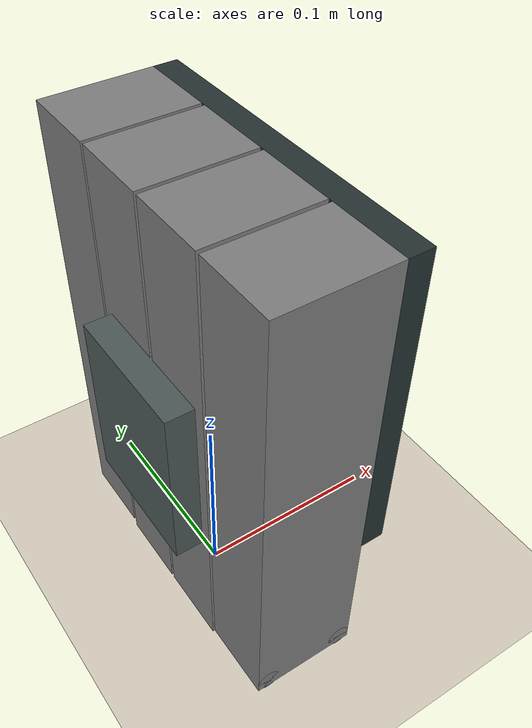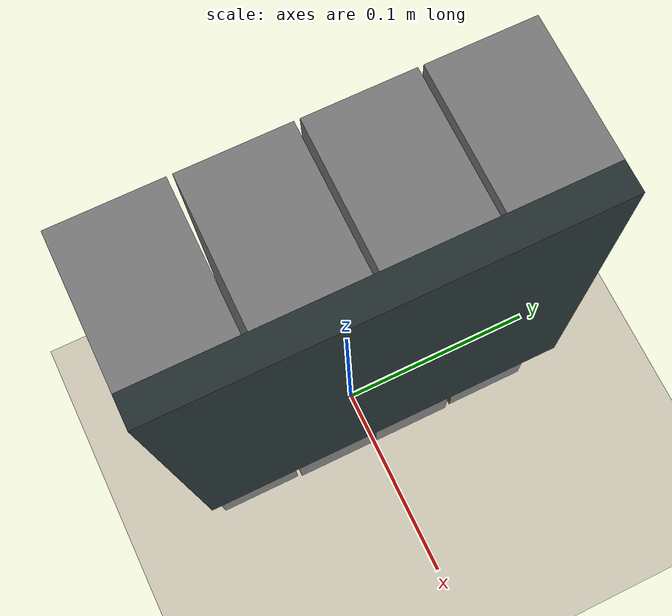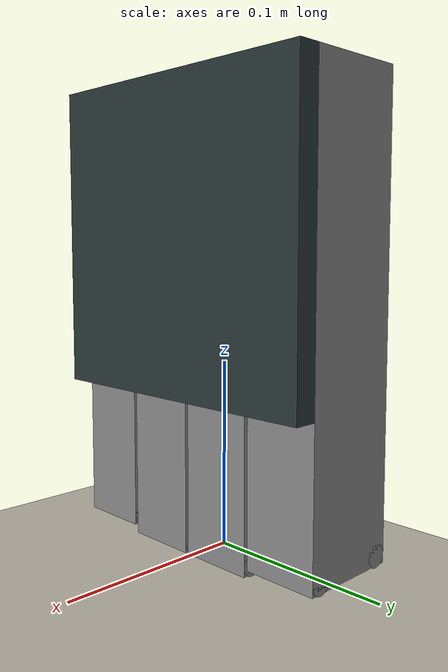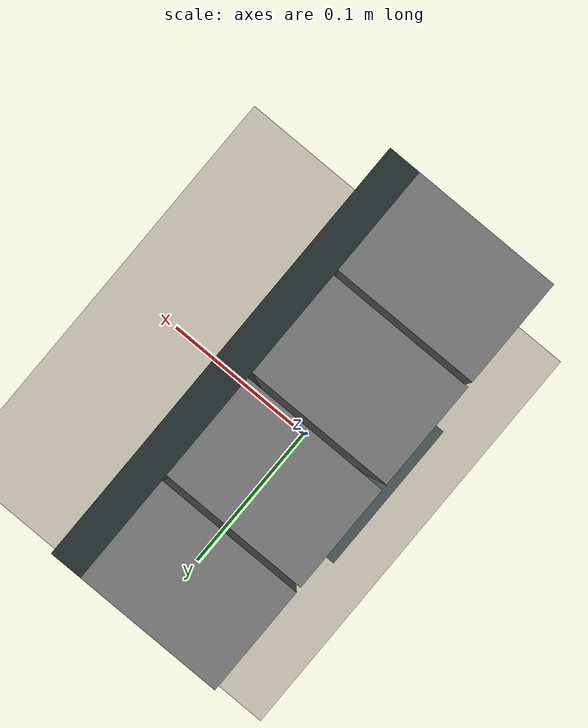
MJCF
<mujoco model="tars_mini">
  <compiler angle="radian"/>
  <option timestep="0.002" gravity="0 0 -9.81"/>
  <default>
    <geom friction="0.9 0.02 0.001"/>
  </default>

  <worldbody>
    <geom name="floor" type="plane" size="10 10 0.1" friction="1.0 0.02 0.001" rgba="0.85 0.82 0.75 1"/>
    <light pos="0 0 2" dir="0 0 -1"/>

    <body name="torso" pos="0 0 0.2200">
      <freejoint/>
      <geom type="box" size="0.0060 0.0830 0.0800" pos="0.0335 0 -0.0550" mass="0.2" rgba="0.15 0.2 0.2 1"/>
      <!-- Pi on a FRONT chest plate (with the display); cells in the outer slab bottoms -->
      <geom type="box" size="0.008 0.035 0.045" pos="-0.0335 0 -0.100" mass="0.1" rgba="0.3 0.35 0.35 1" contype="0" conaffinity="0"/>

      <body name="outer_pair">
        <joint name="outer_pair_joint" type="hinge" axis="0 1 0" range="-2.0 2.0"
               damping="0.05" frictionloss="0.2"/>
        <geom type="box" size="0.0275 0.0200 0.1195" pos="0 -0.0630 -0.0945" mass="0.135"/>
        <geom type="cylinder" size="0.0060 0.0200" pos="-0.0215 -0.0630 -0.2090" euler="1.5708 0 0" mass="0.0075"/>
        <geom type="cylinder" size="0.0060 0.0200" pos="0.0215 -0.0630 -0.2090" euler="1.5708 0 0" mass="0.0075"/>
        <geom type="box" size="0.0275 0.0200 0.1195" pos="0 0.0630 -0.0945" mass="0.135"/>
        <geom type="cylinder" size="0.0060 0.0200" pos="-0.0215 0.0630 -0.2090" euler="1.5708 0 0" mass="0.0075"/>
        <geom type="cylinder" size="0.0060 0.0200" pos="0.0215 0.0630 -0.2090" euler="1.5708 0 0" mass="0.0075"/>
        <geom type="box" size="0.010 0.012 0.035" pos="0 -0.0630 -0.1700" mass="0.1" contype="0" conaffinity="0" rgba="0.2 0.5 0.3 1"/>
        <geom type="box" size="0.010 0.012 0.035" pos="0 0.0630 -0.1700" mass="0.1" contype="0" conaffinity="0" rgba="0.2 0.5 0.3 1"/>
      </body>

      <body name="inner_pair">
        <joint name="inner_pair_joint" type="hinge" axis="0 1 0" range="-2.0 2.0"
               damping="0.05" frictionloss="0.2"/>
        <geom type="box" size="0.0275 0.0200 0.1215" pos="0 -0.0210 -0.0965" mass="0.135"/>
        <geom type="cylinder" size="0.0060 0.0200" pos="-0.0215 -0.0210 -0.2130" euler="1.5708 0 0" mass="0.0075"/>
        <geom type="cylinder" size="0.0060 0.0200" pos="0.0215 -0.0210 -0.2130" euler="1.5708 0 0" mass="0.0075"/>
        <geom type="box" size="0.0275 0.0200 0.1215" pos="0 0.0210 -0.0965" mass="0.135"/>
        <geom type="cylinder" size="0.0060 0.0200" pos="-0.0215 0.0210 -0.2130" euler="1.5708 0 0" mass="0.0075"/>
        <geom type="cylinder" size="0.0060 0.0200" pos="0.0215 0.0210 -0.2130" euler="1.5708 0 0" mass="0.0075"/>
      </body>
    </body>
  </worldbody>

  <actuator>
    <position name="outer_servo" joint="outer_pair_joint" kp="60.0" kv="2.0"
              ctrlrange="-2.0 2.0" forcerange="-1.0 1.0"/>
    <position name="inner_servo" joint="inner_pair_joint" kp="60.0" kv="2.0"
              ctrlrange="-2.0 2.0" forcerange="-1.0 1.0"/>
  </actuator>
</mujoco>
